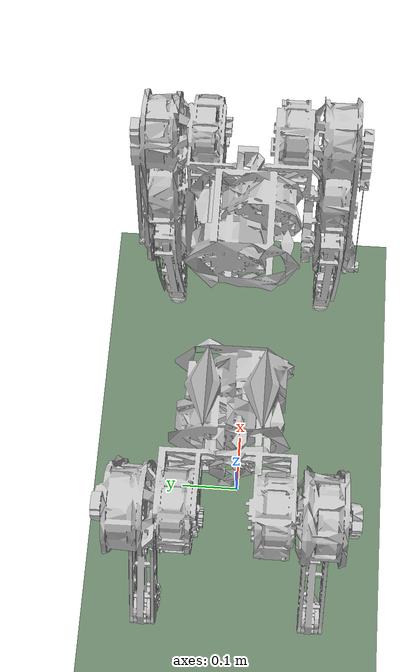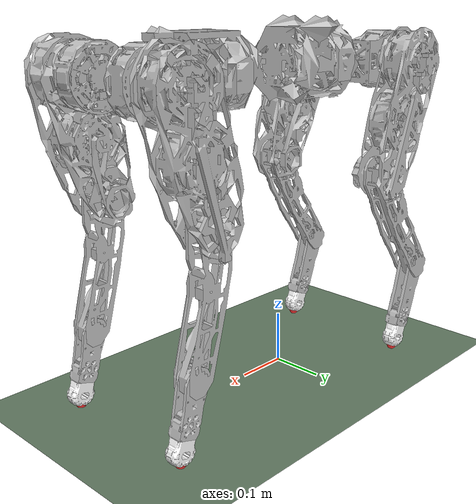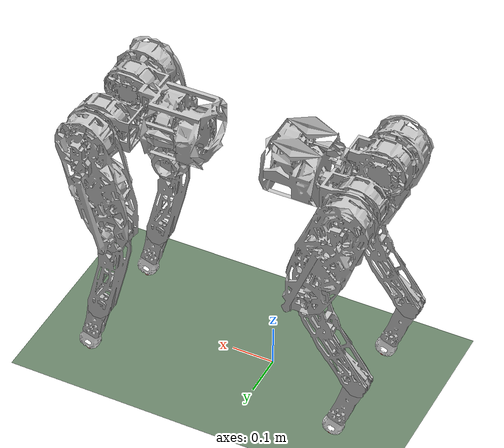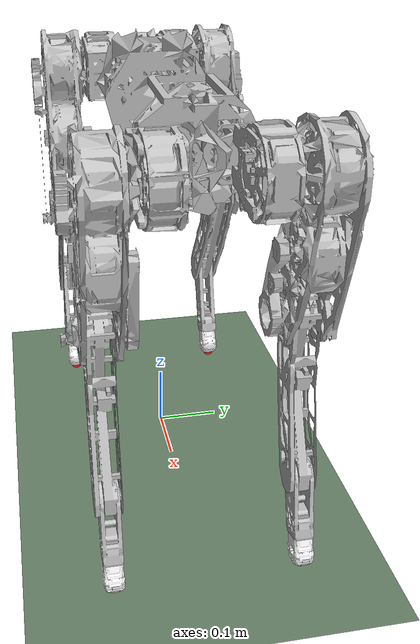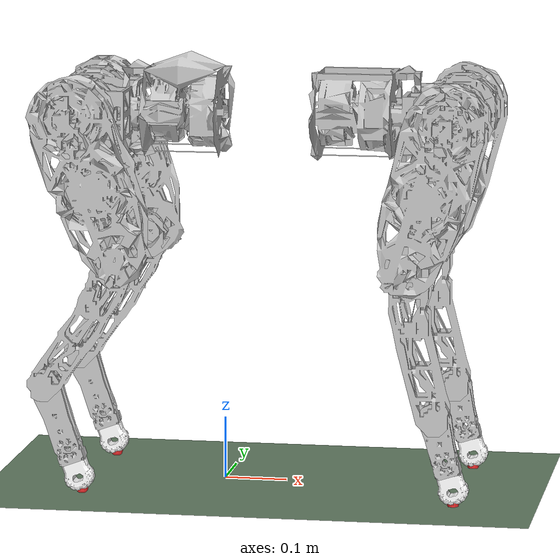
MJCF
<mujoco model="02_Leg_UFDF_260610_8">
  <compiler angle="radian" meshdir="/home/jsh/문서/jsh/simulation/quad/meshes_sim/" />
  <asset>
    <mesh name="base" content_type="model/stl" file="base.STL" />
    <mesh name="HL_hip_link" content_type="model/stl" file="HL_hip_link.STL" />
    <mesh name="HL_thigh_link" content_type="model/stl" file="HL_thigh_link.STL" />
    <mesh name="HL_calf_link" content_type="model/stl" file="HL_calf_link.STL" />
    <mesh name="HL_foot_link" content_type="model/stl" file="HL_foot_link.STL" />
    <mesh name="HL_foot_contact_link" content_type="model/stl" file="HL_foot_contact_link.STL" />
    <mesh name="HR_hip_link" content_type="model/stl" file="HR_hip_link.STL" />
    <mesh name="HR_thigh_link" content_type="model/stl" file="HR_thigh_link.STL" />
    <mesh name="HR_calf_link" content_type="model/stl" file="HR_calf_link.STL" />
    <mesh name="HR_foot_link" content_type="model/stl" file="HR_foot_link.STL" />
    <mesh name="HR_foot_contact_link" content_type="model/stl" file="HR_foot_contact_link.STL" />
    <mesh name="FL_hip_link" content_type="model/stl" file="FL_hip_link.STL" />
    <mesh name="FL_thigh_link" content_type="model/stl" file="FL_thigh_link.STL" />
    <mesh name="FL_calf_link" content_type="model/stl" file="FL_calf_link.STL" />
    <mesh name="FL_foot_link" content_type="model/stl" file="FL_foot_link.STL" />
    <mesh name="FL_foot_contact_link" content_type="model/stl" file="FL_foot_contact_link.STL" />
    <mesh name="FR_hip_link" content_type="model/stl" file="FR_hip_link.STL" />
    <mesh name="FR_thigh_link" content_type="model/stl" file="FR_thigh_link.STL" />
    <mesh name="FR_calf_link" content_type="model/stl" file="FR_calf_link.STL" />
    <mesh name="FR_foot_link" content_type="model/stl" file="FR_foot_link.STL" />
    <mesh name="FR_foot_contact_link" content_type="model/stl" file="FR_foot_contact_link.STL" />
  </asset>
  <worldbody>
    <body name="base" pos="0 0 0.6031">
      <freejoint name="root" />
      <inertial pos="0.075 1.5456e-12 4.1817e-05" quat="0.707106 0.707106 0.000998709 0.000998709" mass="5.617" diaginertia="0.00589992 0.0034812 0.00338838" />
      <geom type="mesh" contype="0" conaffinity="0" group="1" density="0" rgba="0.75294 0.75294 0.75294 1" mesh="base" />
      <geom type="mesh" rgba="0.75294 0.75294 0.75294 1" mesh="base" contype="0" conaffinity="0" />
      <body name="HL_hip_link" pos="-0.225 0.0225 0">
        <inertial pos="0.026196 0.039035 -5.8825e-05" quat="0.727698 -1.12194e-05 -8.00771e-06 0.685898" mass="1.268" diaginertia="0.000788485 0.000555085 0.00044966" />
        <joint name="HL_hip_joint" pos="0 0 0" axis="1 0 0" range="-0.6109 0.6109" actuatorfrcrange="-28 28" />
        <geom type="mesh" contype="0" conaffinity="0" group="1" density="0" rgba="0.75294 0.75294 0.75294 1" mesh="HL_hip_link" />
        <geom type="mesh" rgba="0.75294 0.75294 0.75294 1" mesh="HL_hip_link" contype="0" conaffinity="0" />
        <body name="HL_thigh_link" pos="0 0.115 0">
          <inertial pos="0.033321 0.00079281 -0.088726" quat="0.69629 -0.123419 -0.123322 0.696233" mass="3.021" diaginertia="0.005605 0.00436138 0.00134772" />
          <joint name="HL_thigh_joint" pos="0 0 0" axis="0 1 0" range="-1.396 2.094" actuatorfrcrange="-28 28" />
          <geom type="mesh" contype="0" conaffinity="0" group="1" density="0" rgba="0.75294 0.75294 0.75294 1" mesh="HL_thigh_link" />
          <geom type="mesh" rgba="0.75294 0.75294 0.75294 1" mesh="HL_thigh_link" contype="0" conaffinity="0" />
          <body name="HL_calf_link" pos="0.078665 0 -0.21613">
            <inertial pos="-0.04561 0.00012675 -0.084011" quat="0.683134 0.18256 0.18256 0.683134" mass="0.592" diaginertia="0.0024327 0.0023203 0.000138265" />
            <joint name="HL_calf_joint" pos="0 0 0" axis="0 1 0" range="-0.524 1.484" actuatorfrcrange="-42 42" />
            <geom type="mesh" contype="0" conaffinity="0" group="1" density="0" rgba="0.75294 0.75294 0.75294 1" mesh="HL_calf_link" />
            <geom type="mesh" rgba="0.75294 0.75294 0.75294 1" mesh="HL_calf_link" contype="0" conaffinity="0" />
            <body name="HL_foot_link" pos="-0.1225 0 -0.21218">
              <inertial pos="0.021095 -1.3548e-12 -0.057957" quat="0.696362 -0.12279 -0.122789 0.696365" mass="0.20444" diaginertia="0.00030517 0.000278691 3.05195e-05" />
              <joint name="HL_foot_joint" pos="0 0 0" axis="0 1 0" range="-1.571 0.524" actuatorfrcrange="-56 56" />
              <geom type="mesh" contype="0" conaffinity="0" group="1" density="0" rgba="0.75294 0.75294 0.75294 1" mesh="HL_foot_link" />
              <geom type="mesh" rgba="0.75294 0.75294 0.75294 1" mesh="HL_foot_link" contype="0" conaffinity="0" />
              <body name="HL_foot_contact_link" pos="0.0376222 0 -0.103366">
                <inertial pos="0.016812 0 -0.04619" quat="0.579233 0.405573 0.405573 0.579233" mass="0.033311" diaginertia="1.0583e-05 7.75194e-06 6.94896e-06" />
                <geom type="mesh" contype="0" conaffinity="0" group="1" density="0" rgba="1 1 1 1" mesh="HL_foot_contact_link" />
                <geom type="sphere" rgba="1 0.2 0.2 1" size="0.0100" pos="0.02143 0.00000 -0.06517" condim="3" friction="1.3 0.02 0.001" />
              </body>
            </body>
          </body>
        </body>
      </body>
      <body name="HR_hip_link" pos="-0.225 -0.0225 0">
        <inertial pos="0.044964 -0.03664 4.8852e-05" quat="0.704132 9.93157e-06 1.28479e-05 0.710069" mass="1.385" diaginertia="0.000818289 0.000551961 0.00046473" />
        <joint name="HR_hip_joint" pos="0 0 0" axis="1 0 0" range="-0.6109 0.6109" actuatorfrcrange="-28 28" />
        <geom type="mesh" contype="0" conaffinity="0" group="1" density="0" rgba="0.75294 0.75294 0.75294 1" mesh="HR_hip_link" />
        <geom type="mesh" rgba="0.75294 0.75294 0.75294 1" mesh="HR_hip_link" contype="0" conaffinity="0" />
        <body name="HR_thigh_link" pos="0 -0.115 0">
          <inertial pos="0.031507 -0.0007928 -0.089386" quat="0.696477 -0.122151 -0.122262 0.696456" mass="3.021" diaginertia="0.005605 0.00436141 0.00134769" />
          <joint name="HR_thigh_joint" pos="0 0 0" axis="0 1 0" range="-1.396 2.094" actuatorfrcrange="-28 28" />
          <geom type="mesh" contype="0" conaffinity="0" group="1" density="0" rgba="0.75294 0.75294 0.75294 1" mesh="HR_thigh_link" />
          <geom type="mesh" rgba="0.75294 0.75294 0.75294 1" mesh="HR_thigh_link" contype="0" conaffinity="0" />
          <body name="HR_calf_link" pos="0.078665 0 -0.21613">
            <inertial pos="-0.04561 -0.00012405 -0.084011" quat="0.683134 0.18256 0.18256 0.683134" mass="0.592" diaginertia="0.0024327 0.0023203 0.000138265" />
            <joint name="HR_calf_joint" pos="0 0 0" axis="0 1 0" range="-0.524 1.484" actuatorfrcrange="-42 42" />
            <geom type="mesh" contype="0" conaffinity="0" group="1" density="0" rgba="0.75294 0.75294 0.75294 1" mesh="HR_calf_link" />
            <geom type="mesh" rgba="0.75294 0.75294 0.75294 1" mesh="HR_calf_link" contype="0" conaffinity="0" />
            <body name="HR_foot_link" pos="-0.1225 0 -0.21218">
              <inertial pos="0.021095 -1.3544e-12 -0.057957" quat="0.696362 -0.12279 -0.122789 0.696365" mass="0.20444" diaginertia="0.00030517 0.000278691 3.05195e-05" />
              <joint name="HR_foot_joint" pos="0 0 0" axis="0 1 0" range="-1.571 0.524" actuatorfrcrange="-56 56" />
              <geom type="mesh" contype="0" conaffinity="0" group="1" density="0" rgba="0.75294 0.75294 0.75294 1" mesh="HR_foot_link" />
              <geom type="mesh" rgba="0.75294 0.75294 0.75294 1" mesh="HR_foot_link" contype="0" conaffinity="0" />
              <body name="HR_foot_contact_link" pos="0.0376222 0 -0.103366">
                <inertial pos="0.016812 0 -0.04619" quat="0.579233 0.405573 0.405573 0.579233" mass="0.033311" diaginertia="1.0583e-05 7.75194e-06 6.94896e-06" />
                <geom type="mesh" contype="0" conaffinity="0" group="1" density="0" rgba="1 1 1 1" mesh="HR_foot_contact_link" />
                <geom type="sphere" rgba="1 0.2 0.2 1" size="0.0100" pos="0.02143 0.00000 -0.06517" condim="3" friction="1.3 0.02 0.001" />
              </body>
            </body>
          </body>
        </body>
      </body>
      <body name="FL_hip_link" pos="0.375 0.0225 0">
        <inertial pos="-0.044964 0.03664 4.8852e-05" quat="0.704132 -9.93157e-06 -1.28479e-05 0.710069" mass="1.385" diaginertia="0.000818289 0.000551961 0.00046473" />
        <joint name="FL_hip_joint" pos="0 0 0" axis="1 0 0" range="-0.6109 0.6109" actuatorfrcrange="-28 28" />
        <geom type="mesh" contype="0" conaffinity="0" group="1" density="0" rgba="0.75294 0.75294 0.75294 1" mesh="FL_hip_link" />
        <geom type="mesh" rgba="0.75294 0.75294 0.75294 1" mesh="FL_hip_link" contype="0" conaffinity="0" />
        <body name="FL_thigh_link" pos="0 0.115 0">
          <inertial pos="-0.023596 0.00079279 -0.091792" quat="0.701147 0.0916578 0.0917682 0.701121" mass="3.021" diaginertia="0.005605 0.00436138 0.00134772" />
          <joint name="FL_thigh_joint" pos="0 0 0" axis="0 1 0" range="-2.0071 1.484" actuatorfrcrange="-28 28" />
          <geom type="mesh" contype="0" conaffinity="0" group="1" density="0" rgba="0.75294 0.75294 0.75294 1" mesh="FL_thigh_link" />
          <geom type="mesh" rgba="0.75294 0.75294 0.75294 1" mesh="FL_thigh_link" contype="0" conaffinity="0" />
          <body name="FL_calf_link" pos="-0.059528 0 -0.22216">
            <inertial pos="0.014126 0.00012405 -0.094544" quat="0.704457 -0.0611613 -0.0611613 0.704457" mass="0.592" diaginertia="0.0024327 0.00232031 0.00013827" />
            <joint name="FL_calf_joint" pos="0 0 0" axis="0 1 0" range="-1.9199 0.087" actuatorfrcrange="-42 42" />
            <geom type="mesh" contype="0" conaffinity="0" group="1" density="0" rgba="0.75294 0.75294 0.75294 1" mesh="FL_calf_link" />
            <geom type="mesh" rgba="0.75294 0.75294 0.75294 1" mesh="FL_calf_link" contype="0" conaffinity="0" />
            <body name="FL_foot_link" pos="0.042544 0 -0.24128">
              <inertial pos="0.010724 -1.3835e-12 -0.040023" quat="0.701046 -0.0922999 -0.0922971 0.701068" mass="0.15434" diaginertia="0.00013375 0.000113398 2.37161e-05" />
              <geom type="mesh" contype="0" conaffinity="0" group="1" density="0" rgba="0.75294 0.75294 0.75294 1" mesh="FL_foot_link" />
              <geom type="mesh" rgba="0.75294 0.75294 0.75294 1" mesh="FL_foot_link" contype="0" conaffinity="0" />
              <body name="FL_foot_contact_link" pos="0.0181173 0 -0.0676148">
                <inertial pos="0.012722 0 -0.047479" quat="0.560982 0.430463 0.430463 0.560982" mass="0.033311" diaginertia="1.0583e-05 7.75199e-06 6.94891e-06" />
                <geom type="mesh" contype="0" conaffinity="0" group="1" density="0" rgba="1 1 1 1" mesh="FL_foot_contact_link" />
                <geom type="sphere" rgba="1 0.2 0.2 1" size="0.0100" pos="0.01269 0.00000 -0.06819" condim="3" friction="1.3 0.02 0.001" />
              </body>
            </body>
          </body>
        </body>
      </body>
      <body name="FR_hip_link" pos="0.375 -0.0225 0">
        <inertial pos="-0.026196 -0.039035 -5.8825e-05" quat="0.727698 1.12194e-05 8.00771e-06 0.685898" mass="1.268" diaginertia="0.000788485 0.000555085 0.00044966" />
        <joint name="FR_hip_joint" pos="0 0 0" axis="1 0 0" range="-0.6109 0.6109" actuatorfrcrange="-28 28" />
        <geom type="mesh" contype="0" conaffinity="0" group="1" density="0" rgba="0.75294 0.75294 0.75294 1" mesh="FR_hip_link" />
        <geom type="mesh" rgba="0.75294 0.75294 0.75294 1" mesh="FR_hip_link" contype="0" conaffinity="0" />
        <body name="FR_thigh_link" pos="0 -0.115 0">
          <inertial pos="-0.025461 -0.00079281 -0.091292" quat="0.701007 0.0929302 0.0928301 0.700954" mass="3.021" diaginertia="0.005605 0.0043614 0.0013477" />
          <joint name="FR_thigh_joint" pos="0 0 0" axis="0 1 0" range="-2.0071 1.484" actuatorfrcrange="-28 28" />
          <geom type="mesh" contype="0" conaffinity="0" group="1" density="0" rgba="0.75294 0.75294 0.75294 1" mesh="FR_thigh_link" />
          <geom type="mesh" rgba="0.75294 0.75294 0.75294 1" mesh="FR_thigh_link" contype="0" conaffinity="0" />
          <body name="FR_calf_link" pos="-0.059528 0 -0.22216">
            <inertial pos="0.014126 -0.00012675 -0.094544" quat="0.704457 -0.0611613 -0.0611613 0.704457" mass="0.592" diaginertia="0.0024327 0.00232031 0.00013827" />
            <joint name="FR_calf_joint" pos="0 0 0" axis="0 1 0" range="-1.9199 0.087" actuatorfrcrange="-42 42" />
            <geom type="mesh" contype="0" conaffinity="0" group="1" density="0" rgba="0.75294 0.75294 0.75294 1" mesh="FR_calf_link" />
            <geom type="mesh" rgba="0.75294 0.75294 0.75294 1" mesh="FR_calf_link" contype="0" conaffinity="0" />
            <body name="FR_foot_link" pos="0.042544 0 -0.24128">
              <inertial pos="0.010724 -1.3833e-12 -0.040023" quat="0.701046 -0.0922999 -0.0922971 0.701068" mass="0.15434" diaginertia="0.00013375 0.000113398 2.37161e-05" />
              <geom type="mesh" contype="0" conaffinity="0" group="1" density="0" rgba="0.75294 0.75294 0.75294 1" mesh="FR_foot_link" />
              <geom type="mesh" rgba="0.75294 0.75294 0.75294 1" mesh="FR_foot_link" contype="0" conaffinity="0" />
              <body name="FR_foot_contact_link" pos="0.0181173 0 -0.0676148">
                <inertial pos="0.012722 0 -0.047479" quat="0.560982 0.430463 0.430463 0.560982" mass="0.033311" diaginertia="1.0583e-05 7.75199e-06 6.94891e-06" />
                <geom type="mesh" contype="0" conaffinity="0" group="1" density="0" rgba="1 1 1 1" mesh="FR_foot_contact_link" />
                <geom type="sphere" rgba="1 0.2 0.2 1" size="0.0100" pos="0.01269 0.00000 -0.06819" condim="3" friction="1.3 0.02 0.001" />
              </body>
            </body>
          </body>
        </body>
      </body>
    </body>
    <geom name="floor" type="plane" size="5 5 0.1" rgba="0.4 0.5 0.4 1" />
    <light pos="0 0 3" dir="0 0 -1" />
  </worldbody>
  <option timestep="0.002" gravity="0 0 -9.81" />
  <default>
    <geom friction="0.9 0.02 0.001" condim="3" />
    <motor ctrllimited="true" ctrlrange="-80 80" />
  </default>
  <actuator>
    <motor joint="HL_hip_joint" name="HL_hip" />
    <motor joint="HL_thigh_joint" name="HL_thigh" />
    <motor joint="HL_calf_joint" name="HL_calf" />
    <motor joint="HL_foot_joint" name="HL_foot" />
    <motor joint="HR_hip_joint" name="HR_hip" />
    <motor joint="HR_thigh_joint" name="HR_thigh" />
    <motor joint="HR_calf_joint" name="HR_calf" />
    <motor joint="HR_foot_joint" name="HR_foot" />
    <motor joint="FL_hip_joint" name="FL_hip" />
    <motor joint="FL_thigh_joint" name="FL_thigh" />
    <motor joint="FL_calf_joint" name="FL_calf" />
    <motor joint="FR_hip_joint" name="FR_hip" />
    <motor joint="FR_thigh_joint" name="FR_thigh" />
    <motor joint="FR_calf_joint" name="FR_calf" />
  </actuator>
</mujoco>
